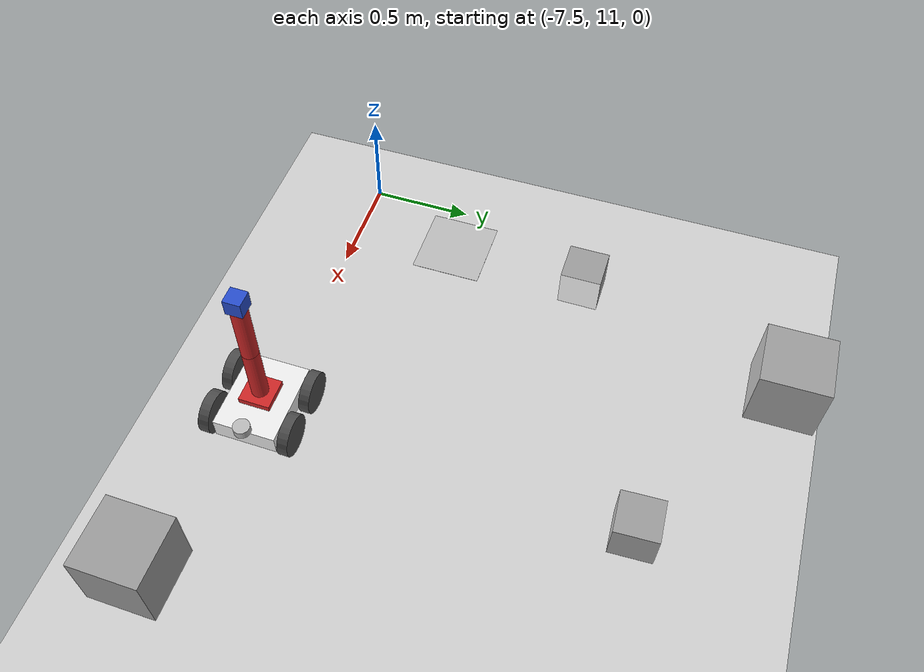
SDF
<sdf version="1.7">
 <world name="default">
  <model name="ground_plane">
   <static>1</static>
   <link name="link">
    <collision name="collision">
     <geometry><plane><normal>0 0 1</normal><size>100 100</size></plane></geometry>
     <surface>
      <contact><collide_bitmask>65535</collide_bitmask></contact>
      <friction><ode><mu>100</mu><mu2>50</mu2></ode></friction>
     </surface>
    </collision>
    <visual name="visual">
     <cast_shadows>0</cast_shadows>
     <geometry><plane><normal>0 0 1</normal><size>100 100</size></plane></geometry>
     <material>
      <script><uri>file://media/materials/scripts/gazebo.material</uri><name>Gazebo/Grey</name></script>
     </material>
    </visual>
   </link>
  </model>
  <model name="marker14">
   <static>0</static>
   <link name="marker">
    <inertial>
     <mass>0.1</mass>
     <inertia><ixx>0</ixx><ixy>0</ixy><ixz>0</ixz><iyy>0</iyy><iyz>0</iyz><izz>0</izz></inertia>
    </inertial>
    <visual name="visual">
     <geometry><box><size>0.368647 0.350422 0.001</size></box></geometry>
     <material>
      <script>
       <uri>model://marker14/material/scripts</uri>
       <uri>model://marker14/material/textures</uri>
       <name>Aruco/marker14</name>
      </script>
     </material>
    </visual>
    <collision name="collision"><geometry><box><size>0.368647 0.350422 0.02</size></box></geometry></collision>
    <self_collide>1</self_collide>
   </link>
   <pose>-7.24908 11.5235 0.01 -1e-06 1e-06 0</pose>
  </model>
  <model name="marker13_box">
   <link name="marker">
    <inertial>
     <mass>0.1</mass>
     <inertia><ixx>0</ixx><ixy>0</ixy><ixz>0</ixz><iyy>0</iyy><iyz>0</iyz><izz>0</izz></inertia>
    </inertial>
    <self_collide>1</self_collide>
    <pose>-0.76428 -0.101106 0.120004 -0.015493 1.56996 -0.015506</pose>
    <visual name="visual">
     <geometry><box><size>0.2 0.2 0.001</size></box></geometry>
     <material>
      <script>
       <uri>model://marker13/material/scripts</uri>
       <uri>model://marker13/material/textures</uri>
       <name>Aruco/marker13</name>
      </script>
      <shader type="pixel"><normal_map>__default__</normal_map></shader>
      <emissive>0 0 0 1</emissive>
      <ambient>1 1 1 1</ambient>
      <diffuse>1 1 1 1</diffuse>
      <specular>0 0 0 1</specular>
     </material>
    </visual>
    <collision name="collision">
     <geometry><box><size>0.2 0.2 0.02</size></box></geometry>
     <surface>
      <friction>
       <ode><mu>1</mu><mu2>1</mu2><fdir1>0 0 0</fdir1><slip1>0</slip1><slip2>0</slip2></ode>
       <torsional>
        <coefficient>1</coefficient>
        <patch_radius>0</patch_radius>
        <surface_radius>0</surface_radius>
        <use_patch_radius>1</use_patch_radius>
        <ode><slip>0</slip></ode>
       </torsional>
      </friction>
      <bounce><restitution_coefficient>0</restitution_coefficient><threshold>1e+06</threshold></bounce>
      <contact>
       <collide_without_contact>0</collide_without_contact>
       <collide_without_contact_bitmask>1</collide_without_contact_bitmask>
       <collide_bitmask>1</collide_bitmask>
       <ode>
        <soft_cfm>0</soft_cfm>
        <soft_erp>0.2</soft_erp>
        <kp>1e+13</kp>
        <kd>1</kd>
        <max_vel>0.01</max_vel>
        <min_depth>0</min_depth>
       </ode>
       <bullet>
        <split_impulse>1</split_impulse>
        <split_impulse_penetration_threshold>-0.01</split_impulse_penetration_threshold>
        <soft_cfm>0</soft_cfm>
        <soft_erp>0.2</soft_erp>
        <kp>1e+13</kp>
        <kd>1</kd>
       </bullet>
      </contact>
     </surface>
    </collision>
   </link>
   <link name="link_1">
    <inertial>
     <mass>1</mass>
     <inertia>
      <ixx>0.166667</ixx>
      <ixy>0</ixy>
      <ixz>0</ixz>
      <iyy>0.166667</iyy>
      <iyz>0</iyz>
      <izz>0.166667</izz>
     </inertia>
    </inertial>
    <pose>-0.86428 -0.101106 0.12 -1.3e-05 -4.2e-05 0</pose>
    <visual name="visual">
     <geometry><box><size>0.2 0.2 0.2</size></box></geometry>
     <material>
      <lighting>1</lighting>
      <script><uri>file://media/materials/scripts/gazebo.material</uri><name>Gazebo/Grey</name></script>
      <shader type="pixel"><normal_map>__default__</normal_map></shader>
      <emissive>0 0 0 1</emissive>
      <ambient>1 1 1 1</ambient>
      <diffuse>1 1 1 1</diffuse>
      <specular>0.01 0.01 0.01 1</specular>
     </material>
    </visual>
    <collision name="collision">
     <geometry><box><size>0.2 0.2 0.2</size></box></geometry>
     <surface>
      <friction>
       <ode><mu>1</mu><mu2>1</mu2><fdir1>0 0 0</fdir1><slip1>0</slip1><slip2>0</slip2></ode>
       <torsional>
        <coefficient>1</coefficient>
        <patch_radius>0</patch_radius>
        <surface_radius>0</surface_radius>
        <use_patch_radius>1</use_patch_radius>
        <ode><slip>0</slip></ode>
       </torsional>
      </friction>
      <bounce><restitution_coefficient>0</restitution_coefficient><threshold>1e+06</threshold></bounce>
      <contact>
       <collide_without_contact>0</collide_without_contact>
       <collide_without_contact_bitmask>1</collide_without_contact_bitmask>
       <collide_bitmask>1</collide_bitmask>
       <ode>
        <soft_cfm>0</soft_cfm>
        <soft_erp>0.2</soft_erp>
        <kp>1e+13</kp>
        <kd>1</kd>
        <max_vel>0.01</max_vel>
        <min_depth>0</min_depth>
       </ode>
       <bullet>
        <split_impulse>1</split_impulse>
        <split_impulse_penetration_threshold>-0.01</split_impulse_penetration_threshold>
        <soft_cfm>0</soft_cfm>
        <soft_erp>0.2</soft_erp>
        <kp>1e+13</kp>
        <kd>1</kd>
       </bullet>
      </contact>
     </surface>
    </collision>
   </link>
   <joint name="link_1_JOINT_3" type="fixed">
    <parent>link_1</parent>
    <child>marker</child>
    <physics>
     <ode><limit><cfm>0</cfm><erp>0.2</erp></limit><suspension><cfm>0</cfm><erp>0.2</erp></suspension></ode>
    </physics>
   </joint>
   <static>0</static>
   <pose>-5.53011 11.3894 1.47996 1.2e-05 4.6e-05 3.14057</pose>
  </model>
  <model name="marker11_box">
   <link name="marker">
    <inertial>
     <mass>0.1</mass>
     <inertia><ixx>0</ixx><ixy>0</ixy><ixz>0</ixz><iyy>0</iyy><iyz>0</iyz><izz>0</izz></inertia>
    </inertial>
    <self_collide>1</self_collide>
    <pose>-0.76428 -0.101106 0.120004 -0.015589 1.56996 -0.015602</pose>
    <visual name="visual">
     <geometry><box><size>0.2 0.2 0.001</size></box></geometry>
     <material>
      <script>
       <uri>model://marker11/material/scripts</uri>
       <uri>model://marker11/material/textures</uri>
       <name>Aruco/marker11</name>
      </script>
      <shader type="pixel"><normal_map>__default__</normal_map></shader>
      <emissive>0 0 0 1</emissive>
      <ambient>1 1 1 1</ambient>
      <diffuse>1 1 1 1</diffuse>
      <specular>0 0 0 1</specular>
     </material>
    </visual>
    <collision name="collision">
     <geometry><box><size>0.2 0.2 0.02</size></box></geometry>
     <surface>
      <friction>
       <ode><mu>1</mu><mu2>1</mu2><fdir1>0 0 0</fdir1><slip1>0</slip1><slip2>0</slip2></ode>
       <torsional>
        <coefficient>1</coefficient>
        <patch_radius>0</patch_radius>
        <surface_radius>0</surface_radius>
        <use_patch_radius>1</use_patch_radius>
        <ode><slip>0</slip></ode>
       </torsional>
      </friction>
      <bounce><restitution_coefficient>0</restitution_coefficient><threshold>1e+06</threshold></bounce>
      <contact>
       <collide_without_contact>0</collide_without_contact>
       <collide_without_contact_bitmask>1</collide_without_contact_bitmask>
       <collide_bitmask>1</collide_bitmask>
       <ode>
        <soft_cfm>0</soft_cfm>
        <soft_erp>0.2</soft_erp>
        <kp>1e+13</kp>
        <kd>1</kd>
        <max_vel>0.01</max_vel>
        <min_depth>0</min_depth>
       </ode>
       <bullet>
        <split_impulse>1</split_impulse>
        <split_impulse_penetration_threshold>-0.01</split_impulse_penetration_threshold>
        <soft_cfm>0</soft_cfm>
        <soft_erp>0.2</soft_erp>
        <kp>1e+13</kp>
        <kd>1</kd>
       </bullet>
      </contact>
     </surface>
    </collision>
   </link>
   <link name="link_1">
    <inertial>
     <mass>1</mass>
     <inertia>
      <ixx>0.166667</ixx>
      <ixy>0</ixy>
      <ixz>0</ixz>
      <iyy>0.166667</iyy>
      <iyz>0</iyz>
      <izz>0.166667</izz>
     </inertia>
    </inertial>
    <pose>-0.86428 -0.101106 0.12 -1.3e-05 -4.2e-05 0</pose>
    <visual name="visual">
     <geometry><box><size>0.2 0.2 0.2</size></box></geometry>
     <material>
      <lighting>1</lighting>
      <script><uri>file://media/materials/scripts/gazebo.material</uri><name>Gazebo/Grey</name></script>
      <shader type="pixel"><normal_map>__default__</normal_map></shader>
      <emissive>0 0 0 1</emissive>
      <ambient>1 1 1 1</ambient>
      <diffuse>1 1 1 1</diffuse>
      <specular>0.01 0.01 0.01 1</specular>
     </material>
    </visual>
    <collision name="collision">
     <geometry><box><size>0.2 0.2 0.2</size></box></geometry>
     <surface>
      <friction>
       <ode><mu>1</mu><mu2>1</mu2><fdir1>0 0 0</fdir1><slip1>0</slip1><slip2>0</slip2></ode>
       <torsional>
        <coefficient>1</coefficient>
        <patch_radius>0</patch_radius>
        <surface_radius>0</surface_radius>
        <use_patch_radius>1</use_patch_radius>
        <ode><slip>0</slip></ode>
       </torsional>
      </friction>
      <bounce><restitution_coefficient>0</restitution_coefficient><threshold>1e+06</threshold></bounce>
      <contact>
       <collide_without_contact>0</collide_without_contact>
       <collide_without_contact_bitmask>1</collide_without_contact_bitmask>
       <collide_bitmask>1</collide_bitmask>
       <ode>
        <soft_cfm>0</soft_cfm>
        <soft_erp>0.2</soft_erp>
        <kp>1e+13</kp>
        <kd>1</kd>
        <max_vel>0.01</max_vel>
        <min_depth>0</min_depth>
       </ode>
       <bullet>
        <split_impulse>1</split_impulse>
        <split_impulse_penetration_threshold>-0.01</split_impulse_penetration_threshold>
        <soft_cfm>0</soft_cfm>
        <soft_erp>0.2</soft_erp>
        <kp>1e+13</kp>
        <kd>1</kd>
       </bullet>
      </contact>
     </surface>
    </collision>
   </link>
   <joint name="link_1_JOINT_3" type="fixed">
    <parent>link_1</parent>
    <child>marker</child>
    <physics>
     <ode><limit><cfm>0</cfm><erp>0.2</erp></limit><suspension><cfm>0</cfm><erp>0.2</erp></suspension></ode>
    </physics>
   </joint>
   <static>0</static>
   <pose>-5.64094 12.1501 1.47996 1.7e-05 4.3e-05 -1.56419</pose>
  </model>
  <model name="marker12_box">
   <link name="marker">
    <inertial>
     <mass>0.1</mass>
     <inertia><ixx>0</ixx><ixy>0</ixy><ixz>0</ixz><iyy>0</iyy><iyz>0</iyz><izz>0</izz></inertia>
    </inertial>
    <self_collide>1</self_collide>
    <pose>-0.76428 -0.101106 0.120004 -0.01541 1.56996 -0.015423</pose>
    <visual name="visual">
     <geometry><box><size>0.2 0.2 0.001</size></box></geometry>
     <material>
      <script>
       <uri>model://marker12/material/scripts</uri>
       <uri>model://marker12/material/textures</uri>
       <name>Aruco/marker12</name>
      </script>
      <shader type="pixel"><normal_map>__default__</normal_map></shader>
      <emissive>0 0 0 1</emissive>
      <ambient>1 1 1 1</ambient>
      <diffuse>1 1 1 1</diffuse>
      <specular>0 0 0 1</specular>
     </material>
    </visual>
    <collision name="collision">
     <geometry><box><size>0.2 0.2 0.02</size></box></geometry>
     <surface>
      <friction>
       <ode><mu>1</mu><mu2>1</mu2><fdir1>0 0 0</fdir1><slip1>0</slip1><slip2>0</slip2></ode>
       <torsional>
        <coefficient>1</coefficient>
        <patch_radius>0</patch_radius>
        <surface_radius>0</surface_radius>
        <use_patch_radius>1</use_patch_radius>
        <ode><slip>0</slip></ode>
       </torsional>
      </friction>
      <bounce><restitution_coefficient>0</restitution_coefficient><threshold>1e+06</threshold></bounce>
      <contact>
       <collide_without_contact>0</collide_without_contact>
       <collide_without_contact_bitmask>1</collide_without_contact_bitmask>
       <collide_bitmask>1</collide_bitmask>
       <ode>
        <soft_cfm>0</soft_cfm>
        <soft_erp>0.2</soft_erp>
        <kp>1e+13</kp>
        <kd>1</kd>
        <max_vel>0.01</max_vel>
        <min_depth>0</min_depth>
       </ode>
       <bullet>
        <split_impulse>1</split_impulse>
        <split_impulse_penetration_threshold>-0.01</split_impulse_penetration_threshold>
        <soft_cfm>0</soft_cfm>
        <soft_erp>0.2</soft_erp>
        <kp>1e+13</kp>
        <kd>1</kd>
       </bullet>
      </contact>
     </surface>
    </collision>
   </link>
   <link name="link_1">
    <inertial>
     <mass>1</mass>
     <inertia>
      <ixx>0.166667</ixx>
      <ixy>0</ixy>
      <ixz>0</ixz>
      <iyy>0.166667</iyy>
      <iyz>0</iyz>
      <izz>0.166667</izz>
     </inertia>
    </inertial>
    <pose>-0.86428 -0.101106 0.12 -1.3e-05 -4.2e-05 0</pose>
    <visual name="visual">
     <geometry><box><size>0.2 0.2 0.2</size></box></geometry>
     <material>
      <lighting>1</lighting>
      <script><uri>file://media/materials/scripts/gazebo.material</uri><name>Gazebo/Grey</name></script>
      <shader type="pixel"><normal_map>__default__</normal_map></shader>
      <emissive>0 0 0 1</emissive>
      <ambient>1 1 1 1</ambient>
      <diffuse>1 1 1 1</diffuse>
      <specular>0.01 0.01 0.01 1</specular>
     </material>
    </visual>
    <collision name="collision">
     <geometry><box><size>0.2 0.2 0.2</size></box></geometry>
     <surface>
      <friction>
       <ode><mu>1</mu><mu2>1</mu2><fdir1>0 0 0</fdir1><slip1>0</slip1><slip2>0</slip2></ode>
       <torsional>
        <coefficient>1</coefficient>
        <patch_radius>0</patch_radius>
        <surface_radius>0</surface_radius>
        <use_patch_radius>1</use_patch_radius>
        <ode><slip>0</slip></ode>
       </torsional>
      </friction>
      <bounce><restitution_coefficient>0</restitution_coefficient><threshold>1e+06</threshold></bounce>
      <contact>
       <collide_without_contact>0</collide_without_contact>
       <collide_without_contact_bitmask>1</collide_without_contact_bitmask>
       <collide_bitmask>1</collide_bitmask>
       <ode>
        <soft_cfm>0</soft_cfm>
        <soft_erp>0.2</soft_erp>
        <kp>1e+13</kp>
        <kd>1</kd>
        <max_vel>0.01</max_vel>
        <min_depth>0</min_depth>
       </ode>
       <bullet>
        <split_impulse>1</split_impulse>
        <split_impulse_penetration_threshold>-0.01</split_impulse_penetration_threshold>
        <soft_cfm>0</soft_cfm>
        <soft_erp>0.2</soft_erp>
        <kp>1e+13</kp>
        <kd>1</kd>
       </bullet>
      </contact>
     </surface>
    </collision>
   </link>
   <joint name="link_1_JOINT_3" type="fixed">
    <parent>link_1</parent>
    <child>marker</child>
    <physics>
     <ode><limit><cfm>0</cfm><erp>0.2</erp></limit><suspension><cfm>0</cfm><erp>0.2</erp></suspension></ode>
    </physics>
   </joint>
   <static>0</static>
   <pose>-5.78863 11.9022 -0.020009 1.2e-05 1.9e-05 -1.52421</pose>
  </model>
  <model name="marker17_box">
   <link name="marker">
    <inertial>
     <mass>0.1</mass>
     <inertia><ixx>0</ixx><ixy>0</ixy><ixz>0</ixz><iyy>0</iyy><iyz>0</iyz><izz>0</izz></inertia>
    </inertial>
    <self_collide>1</self_collide>
    <pose>-0.76428 -0.101106 0.120004 -0.015493 1.56996 -0.015506</pose>
    <visual name="visual">
     <geometry><box><size>0.2 0.2 0.001</size></box></geometry>
     <material>
      <script>
       <uri>model://marker17/material/scripts</uri>
       <uri>model://marker17/material/textures</uri>
       <name>Aruco/marker17</name>
      </script>
      <shader type="pixel"><normal_map>__default__</normal_map></shader>
      <emissive>0 0 0 1</emissive>
      <ambient>1 1 1 1</ambient>
      <diffuse>1 1 1 1</diffuse>
      <specular>0 0 0 1</specular>
     </material>
    </visual>
    <collision name="collision">
     <geometry><box><size>0.2 0.2 0.02</size></box></geometry>
     <surface>
      <friction>
       <ode><mu>1</mu><mu2>1</mu2><fdir1>0 0 0</fdir1><slip1>0</slip1><slip2>0</slip2></ode>
       <torsional>
        <coefficient>1</coefficient>
        <patch_radius>0</patch_radius>
        <surface_radius>0</surface_radius>
        <use_patch_radius>1</use_patch_radius>
        <ode><slip>0</slip></ode>
       </torsional>
      </friction>
      <bounce><restitution_coefficient>0</restitution_coefficient><threshold>1e+06</threshold></bounce>
      <contact>
       <collide_without_contact>0</collide_without_contact>
       <collide_without_contact_bitmask>1</collide_without_contact_bitmask>
       <collide_bitmask>1</collide_bitmask>
       <ode>
        <soft_cfm>0</soft_cfm>
        <soft_erp>0.2</soft_erp>
        <kp>1e+13</kp>
        <kd>1</kd>
        <max_vel>0.01</max_vel>
        <min_depth>0</min_depth>
       </ode>
       <bullet>
        <split_impulse>1</split_impulse>
        <split_impulse_penetration_threshold>-0.01</split_impulse_penetration_threshold>
        <soft_cfm>0</soft_cfm>
        <soft_erp>0.2</soft_erp>
        <kp>1e+13</kp>
        <kd>1</kd>
       </bullet>
      </contact>
     </surface>
    </collision>
   </link>
   <link name="link_1">
    <inertial>
     <mass>1</mass>
     <inertia>
      <ixx>0.166667</ixx>
      <ixy>0</ixy>
      <ixz>0</ixz>
      <iyy>0.166667</iyy>
      <iyz>0</iyz>
      <izz>0.166667</izz>
     </inertia>
    </inertial>
    <pose>-0.86428 -0.101106 0.12 -1.3e-05 -4.2e-05 0</pose>
    <visual name="visual">
     <geometry><box><size>0.2 0.2 0.2</size></box></geometry>
     <material>
      <lighting>1</lighting>
      <script><uri>file://media/materials/scripts/gazebo.material</uri><name>Gazebo/Grey</name></script>
      <shader type="pixel"><normal_map>__default__</normal_map></shader>
      <emissive>0 0 0 1</emissive>
      <ambient>1 1 1 1</ambient>
      <diffuse>1 1 1 1</diffuse>
      <specular>0.01 0.01 0.01 1</specular>
     </material>
    </visual>
    <collision name="collision">
     <geometry><box><size>0.2 0.2 0.2</size></box></geometry>
     <surface>
      <friction>
       <ode><mu>1</mu><mu2>1</mu2><fdir1>0 0 0</fdir1><slip1>0</slip1><slip2>0</slip2></ode>
       <torsional>
        <coefficient>1</coefficient>
        <patch_radius>0</patch_radius>
        <surface_radius>0</surface_radius>
        <use_patch_radius>1</use_patch_radius>
        <ode><slip>0</slip></ode>
       </torsional>
      </friction>
      <bounce><restitution_coefficient>0</restitution_coefficient><threshold>1e+06</threshold></bounce>
      <contact>
       <collide_without_contact>0</collide_without_contact>
       <collide_without_contact_bitmask>1</collide_without_contact_bitmask>
       <collide_bitmask>1</collide_bitmask>
       <ode>
        <soft_cfm>0</soft_cfm>
        <soft_erp>0.2</soft_erp>
        <kp>1e+13</kp>
        <kd>1</kd>
        <max_vel>0.01</max_vel>
        <min_depth>0</min_depth>
       </ode>
       <bullet>
        <split_impulse>1</split_impulse>
        <split_impulse_penetration_threshold>-0.01</split_impulse_penetration_threshold>
        <soft_cfm>0</soft_cfm>
        <soft_erp>0.2</soft_erp>
        <kp>1e+13</kp>
        <kd>1</kd>
       </bullet>
      </contact>
     </surface>
    </collision>
   </link>
   <joint name="link_1_JOINT_3" type="fixed">
    <parent>link_1</parent>
    <child>marker</child>
    <physics>
     <ode><limit><cfm>0</cfm><erp>0.2</erp></limit><suspension><cfm>0</cfm><erp>0.2</erp></suspension></ode>
    </physics>
   </joint>
   <static>0</static>
   <pose>-6.32194 12.3231 -0.020005 2.2e-05 1.6e-05 0.000394</pose>
  </model>
  <model name="robot">
   <link name="base_link">
    <inertial>
     <pose>0.033333 0 0.0125 0 -0 0</pose>
     <mass>0.6</mass>
     <inertia>
      <ixx>0.0346354</ixx>
      <ixy>0</ixy>
      <ixz>-0.00125</ixz>
      <iyy>0.0408854</iyy>
      <iyz>0</iyz>
      <izz>0.04375</izz>
     </inertia>
    </inertial>
    <collision name="base_link_fixed_joint_lump__chassis_collision">
     <geometry><box><size>0.4 0.3 0.1</size></box></geometry>
    </collision>
    <collision name="base_link_fixed_joint_lump__LaserScan_collision_1">
     <pose>0.2 0 0.075 0 -0 0</pose>
     <geometry><cylinder><length>0.04</length><radius>0.04</radius></cylinder></geometry>
    </collision>
    <visual name="base_link_fixed_joint_lump__chassis_visual">
     <geometry><box><size>0.4 0.3 0.1</size></box></geometry>
     <material>
      <script><name>Gazebo/White</name><uri>file://media/materials/scripts/gazebo.material</uri></script>
     </material>
    </visual>
    <visual name="base_link_fixed_joint_lump__LaserScan_visual_1">
     <pose>0.2 0 0.075 0 -0 0</pose>
     <geometry><cylinder><length>0.04</length><radius>0.04</radius></cylinder></geometry>
    </visual>
    <sensor name="LaserScan" type="ray">
     <visualize>1</visualize>
     <update_rate>40</update_rate>
     <ray>
      <scan>
       <horizontal>
        <samples>720</samples>
        <resolution>1</resolution>
        <min_angle>-1.5708</min_angle>
        <max_angle>1.5708</max_angle>
       </horizontal>
       <vertical><samples>1</samples><min_angle>0</min_angle><max_angle>0</max_angle></vertical>
      </scan>
      <range><min>0.1</min><max>30</max><resolution>0.01</resolution></range>
      <noise><type>gaussian</type><mean>0</mean><stddev>0.01</stddev></noise>
     </ray>
     <plugin name="laser_scanner_controller" filename="libgazebo_ros_laser.so">
      <topicName>/scan</topicName>
      <frameName>LaserScan</frameName>
      <robotNamespace>/</robotNamespace>
     </plugin>
     <pose>0.2 0 0.075 0 -0 0</pose>
    </sensor>
   </link>
   <joint name="arm_chassis_joint" type="revolute">
    <pose relative_to="base_link">0 0 0.08 0 -0 0</pose>
    <parent>base_link</parent>
    <child>arm_chassis</child>
    <axis>
     <xyz>0 0 1</xyz>
     <limit><lower>-1e+16</lower><upper>1e+16</upper></limit>
     <dynamics><spring_reference>0</spring_reference><spring_stiffness>0</spring_stiffness></dynamics>
    </axis>
   </joint>
   <link name="arm_chassis">
    <pose relative_to="arm_chassis_joint">0 0 0 0 -0 0</pose>
    <inertial>
     <mass>0.1</mass>
     <inertia>
      <ixx>4.16667e-05</ixx>
      <ixy>0</ixy>
      <ixz>0</ixz>
      <iyy>4.16667e-05</iyy>
      <iyz>0</iyz>
      <izz>4.16667e-05</izz>
     </inertia>
    </inertial>
    <collision name="arm_chassis_collision">
     <geometry><box><size>0.15 0.15 0.03</size></box></geometry>
    </collision>
    <visual name="arm_chassis_visual">
     <geometry><box><size>0.15 0.15 0.03</size></box></geometry>
     <material>
      <script><name>Gazebo/Red</name><uri>file://media/materials/scripts/gazebo.material</uri></script>
     </material>
    </visual>
   </link>
   <joint name="arm_1_joint" type="revolute">
    <pose relative_to="arm_chassis">0 0 0.015 0 -0 0</pose>
    <parent>arm_chassis</parent>
    <child>arm_1</child>
    <axis>
     <xyz>0 1 0</xyz>
     <limit><lower>-1.8</lower><upper>1.8</upper><effort>1000</effort><velocity>0.2</velocity></limit>
     <dynamics><spring_reference>0</spring_reference><spring_stiffness>0</spring_stiffness></dynamics>
    </axis>
   </joint>
   <link name="arm_1">
    <pose relative_to="arm_1_joint">0 0 0 0 -0 0</pose>
    <inertial>
     <mass>0.01</mass>
     <inertia>
      <ixx>1.0279e-05</ixx>
      <ixy>0</ixy>
      <ixz>0</ixz>
      <iyy>1.0279e-05</iyy>
      <iyz>0</iyz>
      <izz>7.225e-06</izz>
     </inertia>
    </inertial>
    <collision name="arm_1_collision">
     <pose>0 0 0.15 0 -0 0</pose>
     <geometry><cylinder><length>0.2</length><radius>0.04</radius></cylinder></geometry>
    </collision>
    <visual name="arm_1_visual">
     <pose>0 0 0.15 0 -0 0</pose>
     <geometry><cylinder><length>0.3</length><radius>0.04</radius></cylinder></geometry>
     <material>
      <script><name>Gazebo/Red</name><uri>file://media/materials/scripts/gazebo.material</uri></script>
     </material>
    </visual>
   </link>
   <joint name="arm_2_joint" type="revolute">
    <pose relative_to="arm_1">0 0 0.3 0 -0 0</pose>
    <parent>arm_1</parent>
    <child>arm_2</child>
    <axis>
     <xyz>0 1 0</xyz>
     <limit><lower>-1.8</lower><upper>1.8</upper><effort>1000</effort><velocity>0.2</velocity></limit>
     <dynamics><spring_reference>0</spring_reference><spring_stiffness>0</spring_stiffness></dynamics>
    </axis>
   </joint>
   <link name="arm_2">
    <pose relative_to="arm_2_joint">0 0 0 0 -0 0</pose>
    <inertial>
     <mass>0.01</mass>
     <inertia>
      <ixx>1.0279e-05</ixx>
      <ixy>0</ixy>
      <ixz>0</ixz>
      <iyy>1.0279e-05</iyy>
      <iyz>0</iyz>
      <izz>7.225e-06</izz>
     </inertia>
    </inertial>
    <collision name="arm_2_collision">
     <pose>0 0 0.15 0 -0 0</pose>
     <geometry><cylinder><length>0.2</length><radius>0.04</radius></cylinder></geometry>
    </collision>
    <visual name="arm_2_visual">
     <pose>0 0 0.15 0 -0 0</pose>
     <geometry><cylinder><length>0.3</length><radius>0.04</radius></cylinder></geometry>
     <material>
      <script><name>Gazebo/Red</name><uri>file://media/materials/scripts/gazebo.material</uri></script>
     </material>
    </visual>
   </link>
   <joint name="RGB_joint" type="revolute">
    <pose relative_to="arm_2">0 0 0.34 0 -0 0</pose>
    <parent>arm_2</parent>
    <child>RGB</child>
    <axis>
     <xyz>0 0 1</xyz>
     <limit><lower>-1e+16</lower><upper>1e+16</upper></limit>
     <dynamics><spring_reference>0</spring_reference><spring_stiffness>0</spring_stiffness></dynamics>
    </axis>
   </joint>
   <link name="RGB">
    <pose relative_to="RGB_joint">0 0 0 0 -0 0</pose>
    <inertial>
     <mass>0.1</mass>
     <inertia><ixx>0.03</ixx><ixy>0</ixy><ixz>0</ixz><iyy>0.03</iyy><iyz>0</iyz><izz>0.03</izz></inertia>
    </inertial>
    <collision name="RGB_collision"><geometry><box><size>0.08 0.08 0.08</size></box></geometry></collision>
    <visual name="RGB_visual">
     <geometry><box><size>0.08 0.08 0.08</size></box></geometry>
     <material>
      <script><name>Gazebo/Blue</name><uri>file://media/materials/scripts/gazebo.material</uri></script>
     </material>
    </visual>
    <sensor name="RGB" type="camera">
     <update_rate>30</update_rate>
     <camera name="RGB">
      <horizontal_fov>1.39626</horizontal_fov>
      <image><width>800</width><height>800</height><format>R8G8B8</format></image>
      <clip><near>0.02</near><far>300</far></clip>
      <noise><type>gaussian</type><mean>0</mean><stddev>0.007</stddev></noise>
     </camera>
     <plugin name="rgb_camera_controller" filename="libgazebo_ros_camera.so">
      <alwaysOn>1</alwaysOn>
      <updateRate>0.0</updateRate>
      <cameraName>RGB</cameraName>
      <imageTopicName>RGB/image_raw</imageTopicName>
      <cameraInfoTopicName>RGB/camera_info</cameraInfoTopicName>
      <frameName>RGB</frameName>
      <hackBaseline>0.07</hackBaseline>
      <distortionK1>0.0</distortionK1>
      <distortionK2>0.0</distortionK2>
      <distortionK3>0.0</distortionK3>
      <distortionT1>0.0</distortionT1>
      <distortionT2>0.0</distortionT2>
      <robotNamespace>/</robotNamespace>
     </plugin>
    </sensor>
   </link>
   <joint name="back_left_wheel_joint" type="revolute">
    <pose relative_to="base_link">-0.12 0.1925 0 0 -0 0</pose>
    <parent>base_link</parent>
    <child>back_left_wheel</child>
    <axis>
     <xyz>0 1 0</xyz>
     <limit><lower>-1e+16</lower><upper>1e+16</upper></limit>
     <dynamics>
      <damping>0</damping>
      <friction>0</friction>
      <spring_reference>0</spring_reference>
      <spring_stiffness>0</spring_stiffness>
     </dynamics>
    </axis>
   </joint>
   <link name="back_left_wheel">
    <pose relative_to="back_left_wheel_joint">0 0 0 0 -0 0</pose>
    <inertial>
     <mass>0.1</mass>
     <inertia>
      <ixx>0.000270833</ixx>
      <ixy>0</ixy>
      <ixz>0</ixz>
      <iyy>0.000270833</iyy>
      <iyz>0</iyz>
      <izz>0.0005</izz>
     </inertia>
    </inertial>
    <collision name="back_left_wheel_collision">
     <pose>0 0 0 1.5708 -0 0</pose>
     <geometry><cylinder><length>0.05</length><radius>0.1</radius></cylinder></geometry>
    </collision>
    <visual name="back_left_wheel_visual">
     <pose>0 0 0 1.5708 -0 0</pose>
     <geometry><cylinder><length>0.05</length><radius>0.1</radius></cylinder></geometry>
     <material>
      <script><name>Gazebo/DarkGray</name><uri>file://media/materials/scripts/gazebo.material</uri></script>
     </material>
    </visual>
   </link>
   <joint name="back_right_wheel_joint" type="revolute">
    <pose relative_to="base_link">-0.12 -0.1925 0 0 -0 0</pose>
    <parent>base_link</parent>
    <child>back_right_wheel</child>
    <axis>
     <xyz>0 1 0</xyz>
     <limit><lower>-1e+16</lower><upper>1e+16</upper></limit>
     <dynamics>
      <damping>0</damping>
      <friction>0</friction>
      <spring_reference>0</spring_reference>
      <spring_stiffness>0</spring_stiffness>
     </dynamics>
    </axis>
   </joint>
   <link name="back_right_wheel">
    <pose relative_to="back_right_wheel_joint">0 0 0 0 -0 0</pose>
    <inertial>
     <mass>0.1</mass>
     <inertia>
      <ixx>0.000270833</ixx>
      <ixy>0</ixy>
      <ixz>0</ixz>
      <iyy>0.000270833</iyy>
      <iyz>0</iyz>
      <izz>0.0005</izz>
     </inertia>
    </inertial>
    <collision name="back_right_wheel_collision">
     <pose>0 0 0 1.5708 -0 0</pose>
     <geometry><cylinder><length>0.05</length><radius>0.1</radius></cylinder></geometry>
    </collision>
    <visual name="back_right_wheel_visual">
     <pose>0 0 0 1.5708 -0 0</pose>
     <geometry><cylinder><length>0.05</length><radius>0.1</radius></cylinder></geometry>
     <material>
      <script><name>Gazebo/DarkGray</name><uri>file://media/materials/scripts/gazebo.material</uri></script>
     </material>
    </visual>
   </link>
   <joint name="front_left_wheel_joint" type="revolute">
    <pose relative_to="base_link">0.12 0.1925 0 0 -0 0</pose>
    <parent>base_link</parent>
    <child>front_left_wheel</child>
    <axis>
     <xyz>0 1 0</xyz>
     <limit><lower>-1e+16</lower><upper>1e+16</upper></limit>
     <dynamics>
      <damping>0</damping>
      <friction>0</friction>
      <spring_reference>0</spring_reference>
      <spring_stiffness>0</spring_stiffness>
     </dynamics>
    </axis>
   </joint>
   <link name="front_left_wheel">
    <pose relative_to="front_left_wheel_joint">0 0 0 0 -0 0</pose>
    <inertial>
     <mass>0.1</mass>
     <inertia>
      <ixx>0.000270833</ixx>
      <ixy>0</ixy>
      <ixz>0</ixz>
      <iyy>0.000270833</iyy>
      <iyz>0</iyz>
      <izz>0.0005</izz>
     </inertia>
    </inertial>
    <collision name="front_left_wheel_collision">
     <pose>0 0 0 1.5708 -0 0</pose>
     <geometry><cylinder><length>0.05</length><radius>0.1</radius></cylinder></geometry>
    </collision>
    <visual name="front_left_wheel_visual">
     <pose>0 0 0 1.5708 -0 0</pose>
     <geometry><cylinder><length>0.05</length><radius>0.1</radius></cylinder></geometry>
     <material>
      <script><name>Gazebo/DarkGray</name><uri>file://media/materials/scripts/gazebo.material</uri></script>
     </material>
    </visual>
   </link>
   <joint name="front_right_wheel_joint" type="revolute">
    <pose relative_to="base_link">0.12 -0.1925 0 0 -0 0</pose>
    <parent>base_link</parent>
    <child>front_right_wheel</child>
    <axis>
     <xyz>0 1 0</xyz>
     <limit><lower>-1e+16</lower><upper>1e+16</upper></limit>
     <dynamics>
      <damping>0</damping>
      <friction>0</friction>
      <spring_reference>0</spring_reference>
      <spring_stiffness>0</spring_stiffness>
     </dynamics>
    </axis>
   </joint>
   <link name="front_right_wheel">
    <pose relative_to="front_right_wheel_joint">0 0 0 0 -0 0</pose>
    <inertial>
     <mass>0.1</mass>
     <inertia>
      <ixx>0.000270833</ixx>
      <ixy>0</ixy>
      <ixz>0</ixz>
      <iyy>0.000270833</iyy>
      <iyz>0</iyz>
      <izz>0.0005</izz>
     </inertia>
    </inertial>
    <collision name="front_right_wheel_collision">
     <pose>0 0 0 1.5708 -0 0</pose>
     <geometry><cylinder><length>0.05</length><radius>0.1</radius></cylinder></geometry>
    </collision>
    <visual name="front_right_wheel_visual">
     <pose>0 0 0 1.5708 -0 0</pose>
     <geometry><cylinder><length>0.05</length><radius>0.1</radius></cylinder></geometry>
     <material>
      <script><name>Gazebo/DarkGray</name><uri>file://media/materials/scripts/gazebo.material</uri></script>
     </material>
    </visual>
   </link>
   <plugin name="mobile_base_controller" filename="libgazebo_ros_skid_steer_drive.so">
    <updateRate>100.0</updateRate>
    <robotNamespace>/A</robotNamespace>
    <leftFrontJoint>front_left_wheel_joint</leftFrontJoint>
    <rightFrontJoint>front_right_wheel_joint</rightFrontJoint>
    <leftRearJoint>back_left_wheel_joint</leftRearJoint>
    <rightRearJoint>back_right_wheel_joint</rightRearJoint>
    <wheelSeparation>0.264</wheelSeparation>
    <wheelDiameter>0.1*2</wheelDiameter>
    <robotBaseFrame>base_link</robotBaseFrame>
    <torque>20</torque>
    <commandTopic>/cmd_vel</commandTopic>
    <odometryTopic>/odom</odometryTopic>
    <odometryFrame>odom</odometryFrame>
    <odometryRate>20.0</odometryRate>
    <covariance_x>100.0</covariance_x>
    <covariance_y>100.0</covariance_y>
    <covariance_yaw>100.0</covariance_yaw>
    <broadcastTF>1</broadcastTF>
   </plugin>
   <plugin name="gazebo_ros_control" filename="libgazebo_ros_control.so">
    <robotNamespace>/A</robotNamespace>
    <legacyModeNS>1</legacyModeNS>
    <robotSimType>gazebo_ros_control/DefaultRobotHWSim</robotSimType>
   </plugin>
   <static>0</static>
   <plugin name="gazebo_ros_control" filename="libgazebo_ros_control.so">
    <robotNamespace>/</robotNamespace>
   </plugin>
   <pose>-5.99922 10.9999 0.1 -0 -0 -0.000518</pose>
  </model>
 </world>
</sdf>
